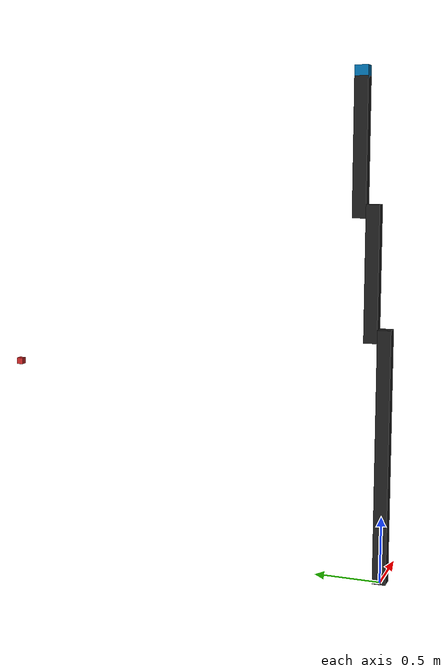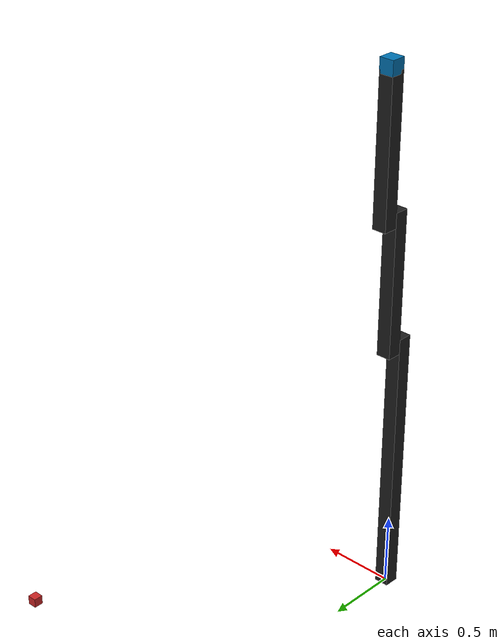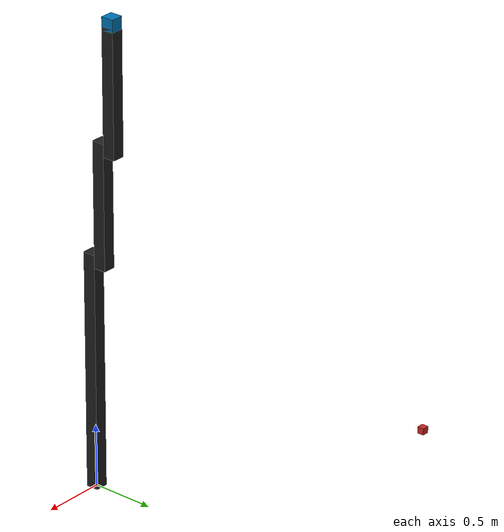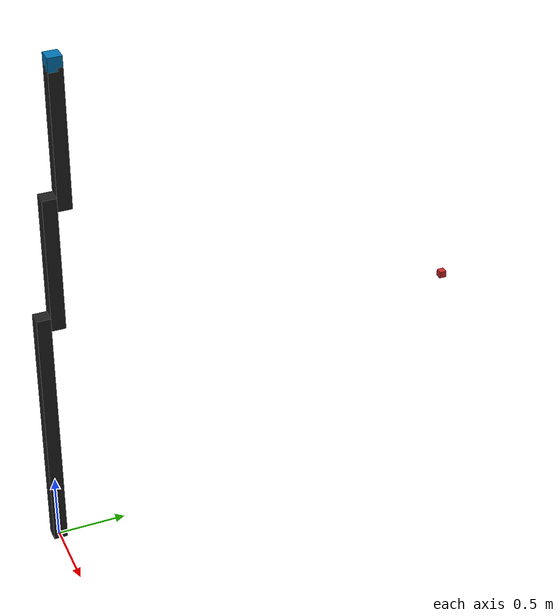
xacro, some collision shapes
<?xml version="1.0"?>
<!-- Revolute-Revolute Manipulator -->
<robot name="broken" xmlns:xacro="http://www.ros.org/wiki/xacro">

  <!-- Arguments for tuning dimensions -->
  <xacro:arg name="d_height1" default="0"/>
  <xacro:arg name="d_height2" default="0"/>
  <xacro:arg name="d_height3" default="0"/>

  <!-- Constants for robot dimensions -->
  <xacro:property name="PI" value="3.1415926535897931"/>
  <xacro:property name="mass" value="1" /> <!-- arbitrary value for mass -->
  <xacro:property name="width" value="0.1" /> <!-- Square dimensions (widthxwidth) of beams -->
  <xacro:property name="d_height1" value="$(arg d_height1)" /> <!-- Link 1 -->
  <xacro:property name="d_height2" value="$(arg d_height2)" /> <!-- Link 2 -->
  <xacro:property name="d_height3" value="$(arg d_height3)" /> <!-- Link 3 -->
  <xacro:property name="height1" value="${1.9 + d_height1}" /> <!-- Link 1 -->
  <xacro:property name="height2" value="${1 + d_height2}" /> <!-- Link 2 -->
  <xacro:property name="height3" value="${1 + d_height3}" /> <!-- Link 3 -->
  <xacro:property name="camera_link" value="0.05" /> <!-- Size of square 'camera' box -->
  <xacro:property name="axel_offset" value="0.05" /> <!-- Space btw top of beam and the each joint -->

  <!-- Import all Gazebo-customization elements, including Gazebo colors -->
  <xacro:include filename="$(find rrbot_description)/urdf/rrbot.gazebo" />
  <!-- Import Rviz colors -->
  <xacro:include filename="$(find rrbot_description)/urdf/materials.xacro" />

  <!-- Used for fixing robot to Gazebo 'base_link' -->
  <link name="world"/>

  <joint name="fixed" type="fixed">
    <parent link="world"/>
    <child link="link1"/>
  </joint>

  <!-- Base Link -->
  <link name="link1">
    <collision>
      <origin xyz="0 0 ${height1/2}" rpy="0 0 0"/>
      <geometry>
	     <box size="${width} ${width} ${height1}"/>
      </geometry>
    </collision>

    <visual>
      <origin xyz="0 0 ${height1/2}" rpy="0 0 0"/>
      <geometry>
	     <box size="${width} ${width} ${height1}"/>
      </geometry>
      <material name="black"/>
    </visual>

    <inertial>
      <origin xyz="0 0 ${height1/2}" rpy="0 0 0"/>
      <mass value="${mass}"/>
      <inertia
	  ixx="${mass / 12.0 * (width*width + height1*height1)}" ixy="0.0" ixz="0.0"
	  iyy="${mass / 12.0 * (height1*height1 + width*width)}" iyz="0.0"
	  izz="${mass / 12.0 * (width*width + width*width)}"/>
    </inertial>
  </link>

  <joint name="joint1" type="continuous">
    <parent link="link1"/>
    <child link="link2"/>
    <origin xyz="0 ${width} ${height1 - axel_offset}" rpy="0 0 0"/>
    <axis xyz="0 1 0"/>
    <dynamics damping="0.7"/>
  </joint>

  <!-- Middle Link -->
  <link name="link2">
    <collision>
      <origin xyz="0 0 ${height2/2 - axel_offset}" rpy="0 0 0"/>
      <geometry>
	     <box size="${width} ${width} ${height2}"/>
      </geometry>
    </collision>

    <visual>
      <origin xyz="0 0 ${height2/2 - axel_offset}" rpy="0 0 0"/>
      <geometry>
	     <box size="${width} ${width} ${height2}"/>
      </geometry>
      <material name="black"/>
    </visual>

    <inertial>
      <origin xyz="0 0 ${height2/2 - axel_offset}" rpy="0 0 0"/>
      <mass value="${mass}"/>
      <inertia
	  ixx="${mass / 12.0 * (width*width + height2*height2)}" ixy="0.0" ixz="0.0"
	  iyy="${mass / 12.0 * (height2*height2 + width*width)}" iyz="0.0"
	  izz="${mass / 12.0 * (width*width + width*width)}"/>
    </inertial>
  </link>

  <joint name="joint2" type="continuous">
    <parent link="link2"/>
    <child link="link3"/>
    <origin xyz="0 ${width} ${height2 - axel_offset*2}" rpy="0 0 0"/>
    <axis xyz="0 1 0"/>
    <dynamics damping="0.7"/>
  </joint>

  <!-- Top Link -->
  <link name="link3">
    <collision>
      <origin xyz="0 0 ${height3/2 - axel_offset}" rpy="0 0 0"/>
      <geometry>
	     <box size="${width} ${width} ${height3}"/>
      </geometry>
    </collision>

    <visual>
      <origin xyz="0 0 ${height3/2 - axel_offset}" rpy="0 0 0"/>
      <geometry>
	     <box size="${width} ${width} ${height3}"/>
      </geometry>
      <material name="black"/>
    </visual>

    <inertial>
      <origin xyz="0 0 ${height3/2 - axel_offset}" rpy="0 0 0"/>
      <mass value="${mass}"/>
      <inertia
	  ixx="${mass / 12.0 * (width*width + height3*height3)}" ixy="0.0" ixz="0.0"
	  iyy="${mass / 12.0 * (height3*height3 + width*width)}" iyz="0.0"
	  izz="${mass / 12.0 * (width*width + width*width)}"/>
    </inertial>
  </link>

  <joint name="hokuyo_joint" type="fixed">
    <axis xyz="0 1 0" />
    <origin xyz="0 0 ${height3 - axel_offset/2}" rpy="0 0 0"/>
    <parent link="link3"/>
    <child link="hokuyo_link"/>
  </joint>

  <!-- Hokuyo Laser -->
  <link name="hokuyo_link">
    <collision>
      <origin xyz="0 0 0" rpy="0 0 0"/>
      <geometry>
	     <box size="0.1 0.1 0.1"/>
      </geometry>
    </collision>

    <visual>
      <origin xyz="0 0 0" rpy="0 0 0"/>
      <geometry>
        <mesh filename="package://rrbot_description/meshes/hokuyo.dae"/>
      </geometry>
    </visual>

    <inertial>
      <mass value="1e-5" />
      <origin xyz="0 0 0" rpy="0 0 0"/>
      <inertia ixx="1e-6" ixy="0" ixz="0" iyy="1e-6" iyz="0" izz="1e-6" />
    </inertial>
  </link>

  <joint name="camera_joint" type="fixed">
    <origin xyz="0 3 1.5" rpy="0 0 ${-PI/2}"/>
    <parent link="world"/>
    <child link="camera_link"/>
  </joint>

  <!-- Camera -->
  <link name="camera_link">
    <collision>
      <origin xyz="0 0 0" rpy="0 0 0"/>
      <geometry>
	     <box size="${camera_link} ${camera_link} ${camera_link}"/>
      </geometry>
    </collision>

    <visual>
      <origin xyz="0 0 0" rpy="0 0 0"/>
      <geometry>
	     <box size="${camera_link} ${camera_link} ${camera_link}"/>
      </geometry>
      <material name="red"/>
    </visual>

    <inertial>
      <mass value="1e-5" />
      <origin xyz="0 0 0" rpy="0 0 0"/>
      <inertia ixx="1e-6" ixy="0" ixz="0" iyy="1e-6" iyz="0" izz="1e-6" />
    </inertial>
  </link>

  <joint name="img_joint" type="fixed">
    <origin xyz="0 0 0" rpy="${-PI/2} 0 ${-PI/2}"/>
    <parent link="camera_link"/>
    <child link="img_link"/>
  </joint>

  <link name="img_link"/>

  <transmission name="tran1">
    <type>transmission_interface/SimpleTransmission</type>
    <joint name="joint1">
      <hardwareInterface>EffortJointInterface</hardwareInterface>
    </joint>
    <actuator name="motor1">
      <hardwareInterface>EffortJointInterface</hardwareInterface>
      <mechanicalReduction>1</mechanicalReduction>
    </actuator>
  </transmission>

  <transmission name="tran2">
    <type>transmission_interface/SimpleTransmission</type>
    <joint name="joint2">
      <hardwareInterface>EffortJointInterface</hardwareInterface>
    </joint>
    <actuator name="motor2">
      <hardwareInterface>EffortJointInterface</hardwareInterface>
      <mechanicalReduction>1</mechanicalReduction>
    </actuator>
  </transmission>

</robot>
